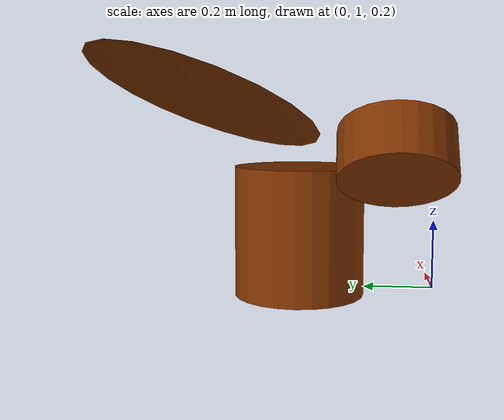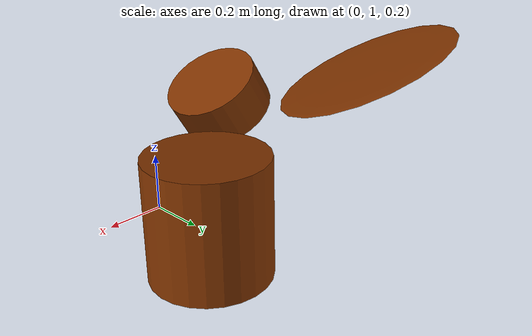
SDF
<?xml version="1.0" ?>
<sdf version="1.7">
    <model name="drumkit">
    <static>true</static>

    <link name="mid_tom">
    <collision name="mid_tom">
        <pose>-.2 1.12 .6 0 .55 0</pose>
        <geometry>
            <cylinder>
                <length>.15</length>
                <radius>0.16</radius>
            </cylinder>
        </geometry>
        <drake:proximity_properties>
          <drake:point_contact_stiffness>
            20000
          </drake:point_contact_stiffness>
          <drake:hunt_crossley_dissipation>
            2
          </drake:hunt_crossley_dissipation>
        </drake:proximity_properties>
    </collision>
    <visual name="mid_tom">
        <pose>-.2 1.12 .6 0 .55 0</pose>
        <geometry>
            <cylinder>
                <length>.15</length>
                <radius>0.16</radius>
            </cylinder>
        </geometry>
        <material>
            <diffuse>.5 .2 0 1</diffuse>
        </material>
    </visual>
    </link>

    <link name="low_tom">
    <collision name="low_tom">
        <pose>.1 1.4 .35 0 0 0</pose>
        <geometry>
            <cylinder>
                <length>.4</length>
                <radius>0.2</radius>
            </cylinder>
        </geometry>
        <drake:proximity_properties>
          <drake:point_contact_stiffness>
            20000
          </drake:point_contact_stiffness>
          <drake:hunt_crossley_dissipation>
            2
          </drake:hunt_crossley_dissipation>
        </drake:proximity_properties>
    </collision>
    <visual name="low_tom">
        <pose>.1 1.4 .35 0 0 0</pose>
        <geometry>
            <cylinder>
                <length>.4</length>
                <radius>0.2</radius>
            </cylinder>
        </geometry>
        <material>
            <diffuse>.5 .2 0 1</diffuse>
        </material>
    </visual>
    </link>

    <link name="ride">
    <collision name="ride">
        <pose>-.40 1.6 .75 .3 .3 0</pose>
        <geometry>
            <ellipsoid>
                <radii>.3 .3 .005</radii>
            </ellipsoid>
        </geometry>

        <drake:proximity_properties>
          <drake:point_contact_stiffness>
            20000
          </drake:point_contact_stiffness>
          <drake:hunt_crossley_dissipation>
            2
          </drake:hunt_crossley_dissipation>
        </drake:proximity_properties>
    </collision>
    <visual name="ride">
        <pose>-.40 1.6 .75 .3 .3 0</pose>
        <geometry>
            <ellipsoid>
                <radii>.3 .3 .005</radii>
            </ellipsoid>
        </geometry>
        <material>
            <diffuse>.5 .2 0 1</diffuse>
        </material>
    </visual>
    </link>

    </model>
    </sdf>
